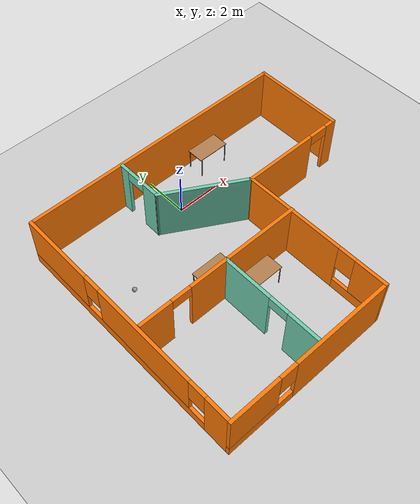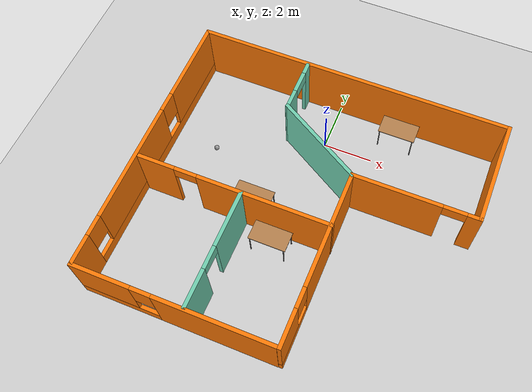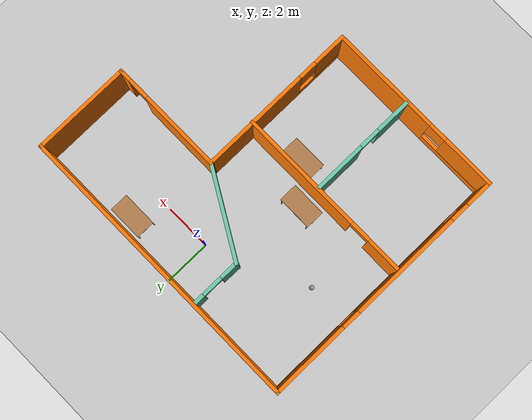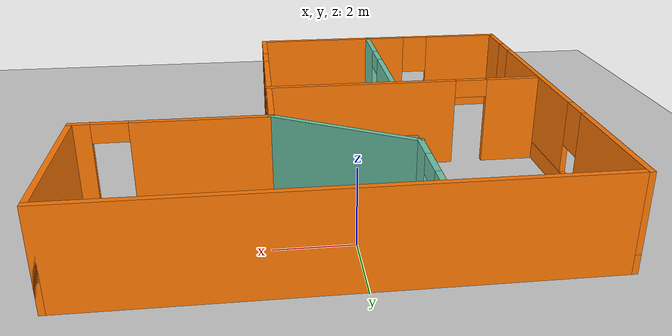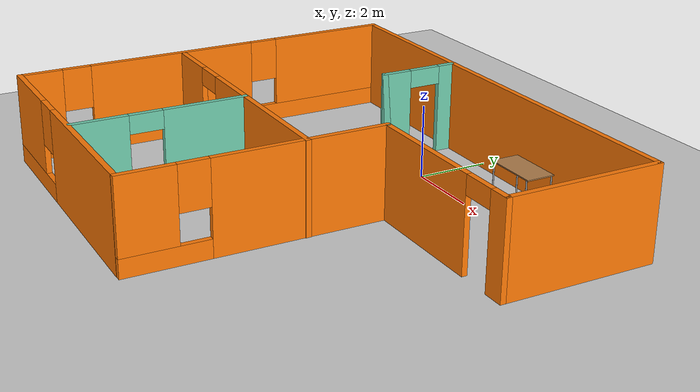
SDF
<sdf version="1.6">
 <world name="default">
  <plugin name="hello" filename="libhello.so"/>
  <light name="sun" type="directional">
   <pose>0 0 10 0 -0 0</pose>
   <diffuse>0.8 0.8 0.8 1</diffuse>
   <specular>0.2 0.2 0.2 1</specular>
   <attenuation>
    <range>1000</range>
    <constant>0.9</constant>
    <linear>0.01</linear>
    <quadratic>0.001</quadratic>
   </attenuation>
   <direction>-0.5 0.1 -0.9</direction>
  </light>
  <model name="ground_plane">
   <static>1</static>
   <link name="link">
    <collision name="collision">
     <geometry><plane><normal>0 0 1</normal><size>100 100</size></plane></geometry>
     <surface>
      <contact><collide_bitmask>65535</collide_bitmask></contact>
      <friction><ode><mu>100</mu><mu2>50</mu2></ode></friction>
     </surface>
    </collision>
    <visual name="visual">
     <cast_shadows>0</cast_shadows>
     <geometry><plane><normal>0 0 1</normal><size>100 100</size></plane></geometry>
     <material>
      <script><uri>file://media/materials/scripts/gazebo.material</uri><name>Gazebo/Grey</name></script>
     </material>
    </visual>
   </link>
  </model>
  <gravity>0 0 -9.8</gravity>
  <magnetic_field>6e-06 2.3e-05 -4.2e-05</magnetic_field>
  <atmosphere type="adiabatic"/>
  <physics name="default_physics" default="0" type="ode">
   <max_step_size>0.001</max_step_size>
   <real_time_factor>1</real_time_factor>
   <real_time_update_rate>1000</real_time_update_rate>
  </physics>
  <scene><ambient>0.4 0.4 0.4 1</ambient><background>0.7 0.7 0.7 1</background><shadows>1</shadows></scene>
  <spherical_coordinates>
   <surface_model>EARTH_WGS84</surface_model>
   <latitude_deg>0</latitude_deg>
   <longitude_deg>0</longitude_deg>
   <elevation>0</elevation>
   <heading_deg>0</heading_deg>
  </spherical_coordinates>
  <model name="building3">
   <pose>0.38939 -3.60389 0 0 -0 0</pose>
   <link name="Wall_1">
    <pose>-2.5 -5.47924 0 0 -0 3.14159</pose>
    <visual name="Wall_1_Visual_0">
     <pose>-1.57403 0 1.25 0 -0 0</pose>
     <geometry><box><size>4.60194 0.15 2.5</size></box></geometry>
     <material>
      <script><uri>file://media/materials/scripts/gazebo.material</uri><name>Gazebo/Grey</name></script>
      <ambient>0.996078 0.47451 0.0196078 1</ambient>
     </material>
     <meta><layer>0</layer></meta>
    </visual>
    <collision name="Wall_1_Collision_0">
     <geometry><box><size>4.60194 0.15 2.5</size></box></geometry>
     <pose>-1.57403 0 1.25 0 -0 0</pose>
    </collision>
    <visual name="Wall_1_Visual_1">
     <pose>2.30097 0 0.25 0 -0 0</pose>
     <geometry><box><size>3.14806 0.15 0.5</size></box></geometry>
     <material>
      <script><uri>file://media/materials/scripts/gazebo.material</uri><name>Gazebo/Grey</name></script>
      <ambient>0.996078 0.47451 0.0196078 1</ambient>
     </material>
     <meta><layer>0</layer></meta>
    </visual>
    <collision name="Wall_1_Collision_1">
     <geometry><box><size>3.14806 0.15 0.5</size></box></geometry>
     <pose>2.30097 0 0.25 0 -0 0</pose>
    </collision>
    <visual name="Wall_1_Visual_2">
     <pose>2.70097 0 1.5 0 -0 0</pose>
     <geometry><box><size>2.34806 0.15 2</size></box></geometry>
     <material>
      <script><uri>file://media/materials/scripts/gazebo.material</uri><name>Gazebo/Grey</name></script>
      <ambient>0.996078 0.47451 0.0196078 1</ambient>
     </material>
     <meta><layer>0</layer></meta>
    </visual>
    <collision name="Wall_1_Collision_2">
     <geometry><box><size>2.34806 0.15 2</size></box></geometry>
     <pose>2.70097 0 1.5 0 -0 0</pose>
    </collision>
    <visual name="Wall_1_Visual_3">
     <pose>1.12694 0 1.9 0 -0 0</pose>
     <geometry><box><size>0.8 0.15 1.2</size></box></geometry>
     <material>
      <script><uri>file://media/materials/scripts/gazebo.material</uri><name>Gazebo/Grey</name></script>
      <ambient>0.996078 0.47451 0.0196078 1</ambient>
     </material>
     <meta><layer>0</layer></meta>
    </visual>
    <collision name="Wall_1_Collision_3">
     <geometry><box><size>0.8 0.15 1.2</size></box></geometry>
     <pose>1.12694 0 1.9 0 -0 0</pose>
    </collision>
   </link>
   <link name="Wall_11">
    <collision name="Wall_11_Collision">
     <geometry><box><size>4 0.15 2.5</size></box></geometry>
     <pose>0 0 1.25 0 -0 0</pose>
    </collision>
    <visual name="Wall_11_Visual">
     <pose>0 0 1.25 0 -0 0</pose>
     <geometry><box><size>4 0.15 2.5</size></box></geometry>
     <material>
      <script><uri>file://media/materials/scripts/gazebo.material</uri><name>Gazebo/Grey</name></script>
      <ambient>0.435294 0.796078 0.67451 1</ambient>
     </material>
     <meta><layer>0</layer></meta>
    </visual>
    <pose>-0.217099 2.34174 0 0 -0 2.61799</pose>
   </link>
   <link name="Wall_12">
    <pose>-1.8842 4.35424 0 0 -0 1.5708</pose>
    <visual name="Wall_12_Visual_0">
     <pose>-0.70293 0 1.25 0 -0 0</pose>
     <geometry><box><size>0.844141 0.15 2.5</size></box></geometry>
     <material>
      <script><uri>file://media/materials/scripts/gazebo.material</uri><name>Gazebo/Grey</name></script>
      <ambient>0.435294 0.796078 0.67451 1</ambient>
     </material>
     <meta><layer>0</layer></meta>
    </visual>
    <collision name="Wall_12_Collision_0">
     <geometry><box><size>0.844141 0.15 2.5</size></box></geometry>
     <pose>-0.70293 0 1.25 0 -0 0</pose>
    </collision>
    <visual name="Wall_12_Visual_1">
     <pose>0.87207 0 1.25 0 -0 0</pose>
     <geometry><box><size>0.505859 0.15 2.5</size></box></geometry>
     <material>
      <script><uri>file://media/materials/scripts/gazebo.material</uri><name>Gazebo/Grey</name></script>
      <ambient>0.435294 0.796078 0.67451 1</ambient>
     </material>
     <meta><layer>0</layer></meta>
    </visual>
    <collision name="Wall_12_Collision_1">
     <geometry><box><size>0.505859 0.15 2.5</size></box></geometry>
     <pose>0.87207 0 1.25 0 -0 0</pose>
    </collision>
    <visual name="Wall_12_Visual_2">
     <pose>0.169141 0 2.25 0 -0 0</pose>
     <geometry><box><size>0.9 0.15 0.5</size></box></geometry>
     <material>
      <script><uri>file://media/materials/scripts/gazebo.material</uri><name>Gazebo/Grey</name></script>
      <ambient>0.435294 0.796078 0.67451 1</ambient>
     </material>
     <meta><layer>0</layer></meta>
    </visual>
    <collision name="Wall_12_Collision_2">
     <geometry><box><size>0.9 0.15 0.5</size></box></geometry>
     <pose>0.169141 0 2.25 0 -0 0</pose>
    </collision>
   </link>
   <link name="Wall_14">
    <pose>-2.01275 -3.10344 0 0 0 -1.5708</pose>
    <visual name="Wall_14_Visual_0">
     <pose>-1.21734 0 1.25 0 -0 0</pose>
     <geometry><box><size>2.31532 0.15 2.5</size></box></geometry>
     <material>
      <script><uri>file://media/materials/scripts/gazebo.material</uri><name>Gazebo/Grey</name></script>
      <ambient>0.435294 0.796078 0.67451 1</ambient>
     </material>
     <meta><layer>0</layer></meta>
    </visual>
    <collision name="Wall_14_Collision_0">
     <geometry><box><size>2.31532 0.15 2.5</size></box></geometry>
     <pose>-1.21734 0 1.25 0 -0 0</pose>
    </collision>
    <visual name="Wall_14_Visual_1">
     <pose>1.60766 0 1.25 0 -0 0</pose>
     <geometry><box><size>1.53468 0.15 2.5</size></box></geometry>
     <material>
      <script><uri>file://media/materials/scripts/gazebo.material</uri><name>Gazebo/Grey</name></script>
      <ambient>0.435294 0.796078 0.67451 1</ambient>
     </material>
     <meta><layer>0</layer></meta>
    </visual>
    <collision name="Wall_14_Collision_1">
     <geometry><box><size>1.53468 0.15 2.5</size></box></geometry>
     <pose>1.60766 0 1.25 0 -0 0</pose>
    </collision>
    <visual name="Wall_14_Visual_2">
     <pose>0.390316 0 2.25 0 -0 0</pose>
     <geometry><box><size>0.9 0.15 0.5</size></box></geometry>
     <material>
      <script><uri>file://media/materials/scripts/gazebo.material</uri><name>Gazebo/Grey</name></script>
      <ambient>0.435294 0.796078 0.67451 1</ambient>
     </material>
     <meta><layer>0</layer></meta>
    </visual>
    <collision name="Wall_14_Collision_2">
     <geometry><box><size>0.9 0.15 0.5</size></box></geometry>
     <pose>0.390316 0 2.25 0 -0 0</pose>
    </collision>
   </link>
   <link name="Wall_2">
    <pose>-6.3 0.017689 0 0 -0 1.5708</pose>
    <visual name="Wall_2_Visual_0">
     <pose>-4.93923 0 1.25 0 -0 0</pose>
     <geometry><box><size>1.19466 0.15 2.5</size></box></geometry>
     <material>
      <script><uri>file://media/materials/scripts/gazebo.material</uri><name>Gazebo/Grey</name></script>
      <ambient>0.996078 0.47451 0.0196078 1</ambient>
     </material>
     <meta><layer>0</layer></meta>
    </visual>
    <collision name="Wall_2_Collision_0">
     <geometry><box><size>1.19466 0.15 2.5</size></box></geometry>
     <pose>-4.93923 0 1.25 0 -0 0</pose>
    </collision>
    <visual name="Wall_2_Visual_1">
     <pose>0.597328 0 0.25 0 -0 0</pose>
     <geometry><box><size>9.87845 0.15 0.5</size></box></geometry>
     <material>
      <script><uri>file://media/materials/scripts/gazebo.material</uri><name>Gazebo/Grey</name></script>
      <ambient>0.996078 0.47451 0.0196078 1</ambient>
     </material>
     <meta><layer>0</layer></meta>
    </visual>
    <collision name="Wall_2_Collision_1">
     <geometry><box><size>9.87845 0.15 0.5</size></box></geometry>
     <pose>0.597328 0 0.25 0 -0 0</pose>
    </collision>
    <visual name="Wall_2_Visual_2">
     <pose>-1.11707 0 1.5 0 -0 0</pose>
     <geometry><box><size>4.84966 0.15 2</size></box></geometry>
     <material>
      <script><uri>file://media/materials/scripts/gazebo.material</uri><name>Gazebo/Grey</name></script>
      <ambient>0.996078 0.47451 0.0196078 1</ambient>
     </material>
     <meta><layer>0</layer></meta>
    </visual>
    <collision name="Wall_2_Collision_2">
     <geometry><box><size>4.84966 0.15 2</size></box></geometry>
     <pose>-1.11707 0 1.5 0 -0 0</pose>
    </collision>
    <visual name="Wall_2_Visual_3">
     <pose>3.82216 0 1.5 0 -0 0</pose>
     <geometry><box><size>3.42879 0.15 2</size></box></geometry>
     <material>
      <script><uri>file://media/materials/scripts/gazebo.material</uri><name>Gazebo/Grey</name></script>
      <ambient>0.996078 0.47451 0.0196078 1</ambient>
     </material>
     <meta><layer>0</layer></meta>
    </visual>
    <collision name="Wall_2_Collision_3">
     <geometry><box><size>3.42879 0.15 2</size></box></geometry>
     <pose>3.82216 0 1.5 0 -0 0</pose>
    </collision>
    <visual name="Wall_2_Visual_4">
     <pose>-3.9419 0 1.9 0 -0 0</pose>
     <geometry><box><size>0.8 0.15 1.2</size></box></geometry>
     <material>
      <script><uri>file://media/materials/scripts/gazebo.material</uri><name>Gazebo/Grey</name></script>
      <ambient>0.996078 0.47451 0.0196078 1</ambient>
     </material>
     <meta><layer>0</layer></meta>
    </visual>
    <collision name="Wall_2_Collision_4">
     <geometry><box><size>0.8 0.15 1.2</size></box></geometry>
     <pose>-3.9419 0 1.9 0 -0 0</pose>
    </collision>
    <visual name="Wall_2_Visual_5">
     <pose>1.70777 0 1.9 0 -0 0</pose>
     <geometry><box><size>0.8 0.15 1.2</size></box></geometry>
     <material>
      <script><uri>file://media/materials/scripts/gazebo.material</uri><name>Gazebo/Grey</name></script>
      <ambient>0.996078 0.47451 0.0196078 1</ambient>
     </material>
     <meta><layer>0</layer></meta>
    </visual>
    <collision name="Wall_2_Collision_5">
     <geometry><box><size>0.8 0.15 1.2</size></box></geometry>
     <pose>1.70777 0 1.9 0 -0 0</pose>
    </collision>
   </link>
   <link name="Wall_3">
    <collision name="Wall_3_Collision">
     <geometry><box><size>12.75 0.15 2.5</size></box></geometry>
     <pose>0 0 1.25 0 -0 0</pose>
    </collision>
    <visual name="Wall_3_Visual">
     <pose>0 0 1.25 0 -0 0</pose>
     <geometry><box><size>12.75 0.15 2.5</size></box></geometry>
     <material>
      <script><uri>file://media/materials/scripts/gazebo.material</uri><name>Gazebo/Grey</name></script>
      <ambient>0.996078 0.47451 0.0196078 1</ambient>
     </material>
     <meta><layer>0</layer></meta>
    </visual>
    <pose>0 5.47924 0 0 -0 0</pose>
   </link>
   <link name="Wall_5">
    <collision name="Wall_5_Collision">
     <geometry><box><size>4.25 0.15 2.5</size></box></geometry>
     <pose>0 0 1.25 0 -0 0</pose>
    </collision>
    <visual name="Wall_5_Visual">
     <pose>0 0 1.25 0 -0 0</pose>
     <geometry><box><size>4.25 0.15 2.5</size></box></geometry>
     <material>
      <script><uri>file://media/materials/scripts/gazebo.material</uri><name>Gazebo/Grey</name></script>
      <ambient>0.996078 0.47451 0.0196078 1</ambient>
     </material>
     <meta><layer>0</layer></meta>
    </visual>
    <pose>6.3 3.42924 0 0 0 -1.5708</pose>
   </link>
   <link name="Wall_6">
    <pose>3.875 1.37924 0 0 -0 3.14159</pose>
    <visual name="Wall_6_Visual_0">
     <pose>-2.21686 0 1.25 0 -0 0</pose>
     <geometry><box><size>0.566286 0.15 2.5</size></box></geometry>
     <material>
      <script><uri>file://media/materials/scripts/gazebo.material</uri><name>Gazebo/Grey</name></script>
      <ambient>0.996078 0.47451 0.0196078 1</ambient>
     </material>
     <meta><layer>0</layer></meta>
    </visual>
    <collision name="Wall_6_Collision_0">
     <geometry><box><size>0.566286 0.15 2.5</size></box></geometry>
     <pose>-2.21686 0 1.25 0 -0 0</pose>
    </collision>
    <visual name="Wall_6_Visual_1">
     <pose>0.733143 0 1.25 0 -0 0</pose>
     <geometry><box><size>3.53371 0.15 2.5</size></box></geometry>
     <material>
      <script><uri>file://media/materials/scripts/gazebo.material</uri><name>Gazebo/Grey</name></script>
      <ambient>0.996078 0.47451 0.0196078 1</ambient>
     </material>
     <meta><layer>0</layer></meta>
    </visual>
    <collision name="Wall_6_Collision_1">
     <geometry><box><size>3.53371 0.15 2.5</size></box></geometry>
     <pose>0.733143 0 1.25 0 -0 0</pose>
    </collision>
    <visual name="Wall_6_Visual_2">
     <pose>-1.48371 0 2.25 0 -0 0</pose>
     <geometry><box><size>0.9 0.15 0.5</size></box></geometry>
     <material>
      <script><uri>file://media/materials/scripts/gazebo.material</uri><name>Gazebo/Grey</name></script>
      <ambient>0.996078 0.47451 0.0196078 1</ambient>
     </material>
     <meta><layer>0</layer></meta>
    </visual>
    <collision name="Wall_6_Collision_2">
     <geometry><box><size>0.9 0.15 0.5</size></box></geometry>
     <pose>-1.48371 0 2.25 0 -0 0</pose>
    </collision>
   </link>
   <link name="Wall_7">
    <pose>1.45 -2.04576 0 0 0 -1.5708</pose>
    <visual name="Wall_7_Visual_0">
     <pose>-1.14529 0 1.25 0 -0 0</pose>
     <geometry><box><size>4.70942 0.15 2.5</size></box></geometry>
     <material>
      <script><uri>file://media/materials/scripts/gazebo.material</uri><name>Gazebo/Grey</name></script>
      <ambient>0.996078 0.47451 0.0196078 1</ambient>
     </material>
     <meta><layer>0</layer></meta>
    </visual>
    <collision name="Wall_7_Collision_0">
     <geometry><box><size>4.70942 0.15 2.5</size></box></geometry>
     <pose>-1.14529 0 1.25 0 -0 0</pose>
    </collision>
    <visual name="Wall_7_Visual_1">
     <pose>2.35471 0 0.25 0 -0 0</pose>
     <geometry><box><size>2.29058 0.15 0.5</size></box></geometry>
     <material>
      <script><uri>file://media/materials/scripts/gazebo.material</uri><name>Gazebo/Grey</name></script>
      <ambient>0.996078 0.47451 0.0196078 1</ambient>
     </material>
     <meta><layer>0</layer></meta>
    </visual>
    <collision name="Wall_7_Collision_1">
     <geometry><box><size>2.29058 0.15 0.5</size></box></geometry>
     <pose>2.35471 0 0.25 0 -0 0</pose>
    </collision>
    <visual name="Wall_7_Visual_2">
     <pose>2.75471 0 1.5 0 -0 0</pose>
     <geometry><box><size>1.49058 0.15 2</size></box></geometry>
     <material>
      <script><uri>file://media/materials/scripts/gazebo.material</uri><name>Gazebo/Grey</name></script>
      <ambient>0.996078 0.47451 0.0196078 1</ambient>
     </material>
     <meta><layer>0</layer></meta>
    </visual>
    <collision name="Wall_7_Collision_2">
     <geometry><box><size>1.49058 0.15 2</size></box></geometry>
     <pose>2.75471 0 1.5 0 -0 0</pose>
    </collision>
    <visual name="Wall_7_Visual_3">
     <pose>1.60942 0 1.9 0 -0 0</pose>
     <geometry><box><size>0.8 0.15 1.2</size></box></geometry>
     <material>
      <script><uri>file://media/materials/scripts/gazebo.material</uri><name>Gazebo/Grey</name></script>
      <ambient>0.996078 0.47451 0.0196078 1</ambient>
     </material>
     <meta><layer>0</layer></meta>
    </visual>
    <collision name="Wall_7_Collision_3">
     <geometry><box><size>0.8 0.15 1.2</size></box></geometry>
     <pose>1.60942 0 1.9 0 -0 0</pose>
    </collision>
   </link>
   <link name="Wall_9">
    <pose>-2.33067 -0.793195 0 0 -0 3.14159</pose>
    <visual name="Wall_9_Visual_0">
     <pose>-1.20379 0 1.25 0 -0 0</pose>
     <geometry><box><size>5.34241 0.15 2.5</size></box></geometry>
     <material>
      <script><uri>file://media/materials/scripts/gazebo.material</uri><name>Gazebo/Grey</name></script>
      <ambient>0.996078 0.47451 0.0196078 1</ambient>
     </material>
     <meta><layer>0</layer></meta>
    </visual>
    <collision name="Wall_9_Collision_0">
     <geometry><box><size>5.34241 0.15 2.5</size></box></geometry>
     <pose>-1.20379 0 1.25 0 -0 0</pose>
    </collision>
    <visual name="Wall_9_Visual_1">
     <pose>3.12121 0 1.25 0 -0 0</pose>
     <geometry><box><size>1.50758 0.15 2.5</size></box></geometry>
     <material>
      <script><uri>file://media/materials/scripts/gazebo.material</uri><name>Gazebo/Grey</name></script>
      <ambient>0.996078 0.47451 0.0196078 1</ambient>
     </material>
     <meta><layer>0</layer></meta>
    </visual>
    <collision name="Wall_9_Collision_1">
     <geometry><box><size>1.50758 0.15 2.5</size></box></geometry>
     <pose>3.12121 0 1.25 0 -0 0</pose>
    </collision>
    <visual name="Wall_9_Visual_2">
     <pose>1.91742 0 2.25 0 -0 0</pose>
     <geometry><box><size>0.9 0.15 0.5</size></box></geometry>
     <material>
      <script><uri>file://media/materials/scripts/gazebo.material</uri><name>Gazebo/Grey</name></script>
      <ambient>0.996078 0.47451 0.0196078 1</ambient>
     </material>
     <meta><layer>0</layer></meta>
    </visual>
    <collision name="Wall_9_Collision_2">
     <geometry><box><size>0.9 0.15 0.5</size></box></geometry>
     <pose>1.91742 0 2.25 0 -0 0</pose>
    </collision>
   </link>
   <static>1</static>
  </model>
  <model name="table">
   <static>1</static>
   <link name="link">
    <collision name="surface">
     <pose>0 0 1 0 -0 0</pose>
     <geometry><box><size>1.5 0.8 0.03</size></box></geometry>
     <surface><friction><ode><mu>0.6</mu><mu2>0.6</mu2></ode></friction></surface>
    </collision>
    <visual name="visual1">
     <pose>0 0 1 0 -0 0</pose>
     <geometry><box><size>1.5 0.8 0.03</size></box></geometry>
     <material>
      <script><uri>file://media/materials/scripts/gazebo.material</uri><name>Gazebo/Wood</name></script>
     </material>
    </visual>
    <collision name="front_left_leg">
     <pose>0.68 0.38 0.5 0 -0 0</pose>
     <geometry><cylinder><radius>0.02</radius><length>1</length></cylinder></geometry>
    </collision>
    <visual name="front_left_leg">
     <pose>0.68 0.38 0.5 0 -0 0</pose>
     <geometry><cylinder><radius>0.02</radius><length>1</length></cylinder></geometry>
     <material>
      <script><uri>file://media/materials/scripts/gazebo.material</uri><name>Gazebo/Grey</name></script>
     </material>
    </visual>
    <collision name="front_right_leg">
     <pose>0.68 -0.38 0.5 0 -0 0</pose>
     <geometry><cylinder><radius>0.02</radius><length>1</length></cylinder></geometry>
    </collision>
    <visual name="front_right_leg">
     <pose>0.68 -0.38 0.5 0 -0 0</pose>
     <geometry><cylinder><radius>0.02</radius><length>1</length></cylinder></geometry>
     <material>
      <script><uri>file://media/materials/scripts/gazebo.material</uri><name>Gazebo/Grey</name></script>
     </material>
    </visual>
    <collision name="back_right_leg">
     <pose>-0.68 -0.38 0.5 0 -0 0</pose>
     <geometry><cylinder><radius>0.02</radius><length>1</length></cylinder></geometry>
    </collision>
    <visual name="back_right_leg">
     <pose>-0.68 -0.38 0.5 0 -0 0</pose>
     <geometry><cylinder><radius>0.02</radius><length>1</length></cylinder></geometry>
     <material>
      <script><uri>file://media/materials/scripts/gazebo.material</uri><name>Gazebo/Grey</name></script>
     </material>
    </visual>
    <collision name="back_left_leg">
     <pose>-0.68 0.38 0.5 0 -0 0</pose>
     <geometry><cylinder><radius>0.02</radius><length>1</length></cylinder></geometry>
    </collision>
    <visual name="back_left_leg">
     <pose>-0.68 0.38 0.5 0 -0 0</pose>
     <geometry><cylinder><radius>0.02</radius><length>1</length></cylinder></geometry>
     <material>
      <script><uri>file://media/materials/scripts/gazebo.material</uri><name>Gazebo/Grey</name></script>
     </material>
    </visual>
   </link>
   <pose>-0.290217 -4.9908 0 0 -0 0</pose>
  </model>
  <model name="table_0">
   <static>1</static>
   <link name="link">
    <collision name="surface">
     <pose>0 0 1 0 -0 0</pose>
     <geometry><box><size>1.5 0.8 0.03</size></box></geometry>
     <surface><friction><ode><mu>0.6</mu><mu2>0.6</mu2></ode></friction></surface>
    </collision>
    <visual name="visual1">
     <pose>0 0 1 0 -0 0</pose>
     <geometry><box><size>1.5 0.8 0.03</size></box></geometry>
     <material>
      <script><uri>file://media/materials/scripts/gazebo.material</uri><name>Gazebo/Wood</name></script>
     </material>
    </visual>
    <collision name="front_left_leg">
     <pose>0.68 0.38 0.5 0 -0 0</pose>
     <geometry><cylinder><radius>0.02</radius><length>1</length></cylinder></geometry>
    </collision>
    <visual name="front_left_leg">
     <pose>0.68 0.38 0.5 0 -0 0</pose>
     <geometry><cylinder><radius>0.02</radius><length>1</length></cylinder></geometry>
     <material>
      <script><uri>file://media/materials/scripts/gazebo.material</uri><name>Gazebo/Grey</name></script>
     </material>
    </visual>
    <collision name="front_right_leg">
     <pose>0.68 -0.38 0.5 0 -0 0</pose>
     <geometry><cylinder><radius>0.02</radius><length>1</length></cylinder></geometry>
    </collision>
    <visual name="front_right_leg">
     <pose>0.68 -0.38 0.5 0 -0 0</pose>
     <geometry><cylinder><radius>0.02</radius><length>1</length></cylinder></geometry>
     <material>
      <script><uri>file://media/materials/scripts/gazebo.material</uri><name>Gazebo/Grey</name></script>
     </material>
    </visual>
    <collision name="back_right_leg">
     <pose>-0.68 -0.38 0.5 0 -0 0</pose>
     <geometry><cylinder><radius>0.02</radius><length>1</length></cylinder></geometry>
    </collision>
    <visual name="back_right_leg">
     <pose>-0.68 -0.38 0.5 0 -0 0</pose>
     <geometry><cylinder><radius>0.02</radius><length>1</length></cylinder></geometry>
     <material>
      <script><uri>file://media/materials/scripts/gazebo.material</uri><name>Gazebo/Grey</name></script>
     </material>
    </visual>
    <collision name="back_left_leg">
     <pose>-0.68 0.38 0.5 0 -0 0</pose>
     <geometry><cylinder><radius>0.02</radius><length>1</length></cylinder></geometry>
    </collision>
    <visual name="back_left_leg">
     <pose>-0.68 0.38 0.5 0 -0 0</pose>
     <geometry><cylinder><radius>0.02</radius><length>1</length></cylinder></geometry>
     <material>
      <script><uri>file://media/materials/scripts/gazebo.material</uri><name>Gazebo/Grey</name></script>
     </material>
    </visual>
   </link>
   <pose>-1.57117 -3.65997 0 0 -0 0</pose>
  </model>
  <model name="table_1">
   <static>1</static>
   <link name="link">
    <collision name="surface">
     <pose>0 0 1 0 -0 0</pose>
     <geometry><box><size>1.5 0.8 0.03</size></box></geometry>
     <surface><friction><ode><mu>0.6</mu><mu2>0.6</mu2></ode></friction></surface>
    </collision>
    <visual name="visual1">
     <pose>0 0 1 0 -0 0</pose>
     <geometry><box><size>1.5 0.8 0.03</size></box></geometry>
     <material>
      <script><uri>file://media/materials/scripts/gazebo.material</uri><name>Gazebo/Wood</name></script>
     </material>
    </visual>
    <collision name="front_left_leg">
     <pose>0.68 0.38 0.5 0 -0 0</pose>
     <geometry><cylinder><radius>0.02</radius><length>1</length></cylinder></geometry>
    </collision>
    <visual name="front_left_leg">
     <pose>0.68 0.38 0.5 0 -0 0</pose>
     <geometry><cylinder><radius>0.02</radius><length>1</length></cylinder></geometry>
     <material>
      <script><uri>file://media/materials/scripts/gazebo.material</uri><name>Gazebo/Grey</name></script>
     </material>
    </visual>
    <collision name="front_right_leg">
     <pose>0.68 -0.38 0.5 0 -0 0</pose>
     <geometry><cylinder><radius>0.02</radius><length>1</length></cylinder></geometry>
    </collision>
    <visual name="front_right_leg">
     <pose>0.68 -0.38 0.5 0 -0 0</pose>
     <geometry><cylinder><radius>0.02</radius><length>1</length></cylinder></geometry>
     <material>
      <script><uri>file://media/materials/scripts/gazebo.material</uri><name>Gazebo/Grey</name></script>
     </material>
    </visual>
    <collision name="back_right_leg">
     <pose>-0.68 -0.38 0.5 0 -0 0</pose>
     <geometry><cylinder><radius>0.02</radius><length>1</length></cylinder></geometry>
    </collision>
    <visual name="back_right_leg">
     <pose>-0.68 -0.38 0.5 0 -0 0</pose>
     <geometry><cylinder><radius>0.02</radius><length>1</length></cylinder></geometry>
     <material>
      <script><uri>file://media/materials/scripts/gazebo.material</uri><name>Gazebo/Grey</name></script>
     </material>
    </visual>
    <collision name="back_left_leg">
     <pose>-0.68 0.38 0.5 0 -0 0</pose>
     <geometry><cylinder><radius>0.02</radius><length>1</length></cylinder></geometry>
    </collision>
    <visual name="back_left_leg">
     <pose>-0.68 0.38 0.5 0 -0 0</pose>
     <geometry><cylinder><radius>0.02</radius><length>1</length></cylinder></geometry>
     <material>
      <script><uri>file://media/materials/scripts/gazebo.material</uri><name>Gazebo/Grey</name></script>
     </material>
    </visual>
   </link>
   <pose>2.67876 1.25696 0 0 -0 0</pose>
  </model>
  <model name="myball2">
   <link name="link_1">
    <inertial>
     <mass>1</mass>
     <inertia><ixx>0.1</ixx><ixy>0</ixy><ixz>0</ixz><iyy>0.1</iyy><iyz>0</iyz><izz>0.1</izz></inertia>
    </inertial>
    <visual name="visual">
     <geometry><sphere><radius>0.1</radius></sphere></geometry>
     <material>
      <lighting>1</lighting>
      <script><uri>file://media/materials/scripts/gazebo.material</uri><name>Gazebo/Grey</name></script>
      <shader type="pixel"><normal_map>__default__</normal_map></shader>
      <ambient>1 1 1 1</ambient>
      <diffuse>1 1 1 1</diffuse>
      <specular>1 1 1 1</specular>
      <emissive>1 1 1 1</emissive>
     </material>
    </visual>
    <collision name="collision">
     <geometry><sphere><radius>0.1</radius></sphere></geometry>
     <surface>
      <friction>
       <ode><mu>1</mu><mu2>1</mu2><fdir1>0 0 0</fdir1><slip1>0</slip1><slip2>0</slip2></ode>
       <torsional>
        <coefficient>1</coefficient>
        <patch_radius>0</patch_radius>
        <surface_radius>0</surface_radius>
        <use_patch_radius>1</use_patch_radius>
        <ode><slip>0</slip></ode>
       </torsional>
      </friction>
      <bounce><restitution_coefficient>0</restitution_coefficient><threshold>1e+06</threshold></bounce>
      <contact>
       <collide_without_contact>0</collide_without_contact>
       <collide_without_contact_bitmask>1</collide_without_contact_bitmask>
       <collide_bitmask>1</collide_bitmask>
       <ode>
        <soft_cfm>0</soft_cfm>
        <soft_erp>0.2</soft_erp>
        <kp>1e+13</kp>
        <kd>1</kd>
        <max_vel>0.01</max_vel>
        <min_depth>0</min_depth>
       </ode>
       <bullet>
        <split_impulse>1</split_impulse>
        <split_impulse_penetration_threshold>-0.01</split_impulse_penetration_threshold>
        <soft_cfm>0</soft_cfm>
        <soft_erp>0.2</soft_erp>
        <kp>1e+13</kp>
        <kd>1</kd>
       </bullet>
      </contact>
     </surface>
    </collision>
   </link>
   <static>0</static>
   <pose>-4.07289 -1.81115 0.1 0 -0 0</pose>
  </model>
 </world>
</sdf>
